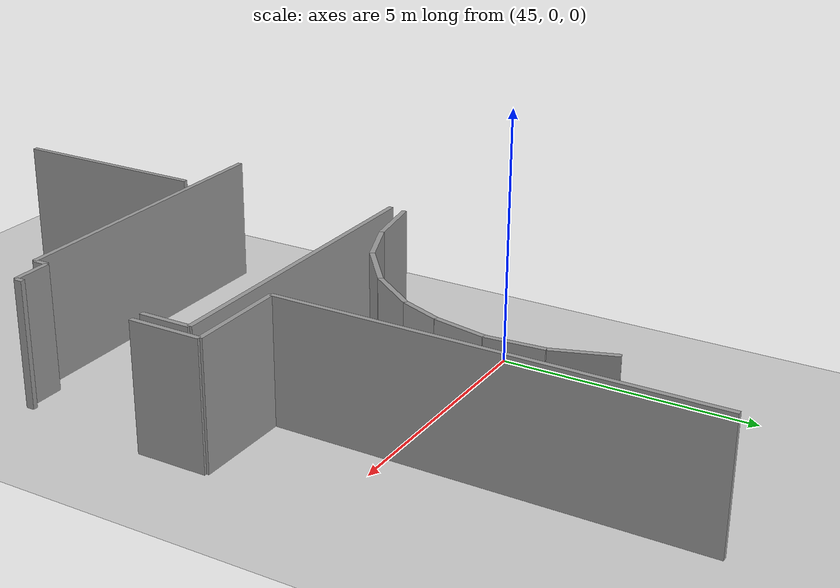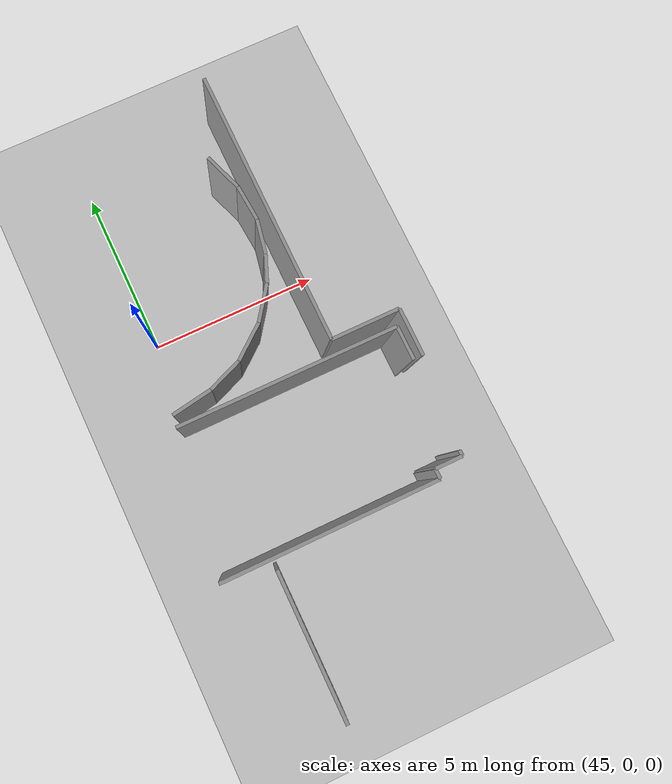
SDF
<sdf version="1.6">
 <world name="default">
  <model name="ground_plane">
   <static>1</static>
   <link name="link">
    <collision name="collision">
     <geometry><plane><normal>0 0 1</normal><size>100 100</size></plane></geometry>
     <surface><friction><ode><mu>100</mu><mu2>50</mu2></ode></friction></surface>
    </collision>
    <visual name="visual">
     <cast_shadows>0</cast_shadows>
     <geometry><plane><normal>0 0 1</normal><size>100 100</size></plane></geometry>
     <material>
      <script><uri>file://media/materials/scripts/gazebo.material</uri><name>Gazebo/Grey</name></script>
     </material>
    </visual>
   </link>
  </model>
  <model name="0510032218_A-40">
   <static>1</static>
   <link name="Wall_165">
    <collision name="Wall_165_Collision">
     <geometry><box><size>1.16955224345 0.1 2.5</size></box></geometry>
     <pose>0.584776121726 0 1.25 0 0 0</pose>
    </collision>
    <visual name="Wall_165_Visual">
     <pose>0.584776121726 0 1.25 0 0 0</pose>
     <geometry><box><size>1.16955224345 0.1 2.5</size></box></geometry>
     <material>
      <script><uri>file://media/materials/scripts/gazebo.material</uri><name>Gazebo/Grey</name></script>
      <ambient>1 1 1 1</ambient>
     </material>
    </visual>
    <pose>123.270612128 -46.0589597944 0 0 0 -1.22996254757</pose>
   </link>
   <link name="Wall_166">
    <collision name="Wall_166_Collision">
     <geometry><box><size>1.06716528413 0.1 2.5</size></box></geometry>
     <pose>0.533582642067 0 1.25 0 0 0</pose>
    </collision>
    <visual name="Wall_166_Visual">
     <pose>0.533582642067 0 1.25 0 0 0</pose>
     <geometry><box><size>1.06716528413 0.1 2.5</size></box></geometry>
     <material>
      <script><uri>file://media/materials/scripts/gazebo.material</uri><name>Gazebo/Grey</name></script>
      <ambient>1 1 1 1</ambient>
     </material>
    </visual>
    <pose>123.661561895 -47.1612350459 0 0 0 -1.49459915335</pose>
   </link>
   <link name="Wall_167">
    <collision name="Wall_167_Collision">
     <geometry><box><size>1.0033344051 0.1 2.5</size></box></geometry>
     <pose>0.501667202549 0 1.25 0 0 0</pose>
    </collision>
    <visual name="Wall_167_Visual">
     <pose>0.501667202549 0 1.25 0 0 0</pose>
     <geometry><box><size>1.0033344051 0.1 2.5</size></box></geometry>
     <material>
      <script><uri>file://media/materials/scripts/gazebo.material</uri><name>Gazebo/Grey</name></script>
      <ambient>1 1 1 1</ambient>
     </material>
    </visual>
    <pose>123.74279821 -48.2253038429 0 0 0 -1.7720375444</pose>
   </link>
   <link name="Wall_168">
    <collision name="Wall_168_Collision">
     <geometry><box><size>0.809200599992 0.1 2.5</size></box></geometry>
     <pose>0.404600299996 0 1.25 0 0 0</pose>
    </collision>
    <visual name="Wall_168_Visual">
     <pose>0.404600299996 0 1.25 0 0 0</pose>
     <geometry><box><size>0.809200599992 0.1 2.5</size></box></geometry>
     <material>
      <script><uri>file://media/materials/scripts/gazebo.material</uri><name>Gazebo/Grey</name></script>
      <ambient>1 1 1 1</ambient>
     </material>
    </visual>
    <pose>123.542246057 -49.2083901882 0 0 0 -1.95846832551</pose>
   </link>
   <link name="Wall_169">
    <collision name="Wall_169_Collision">
     <geometry><box><size>1.10840777504 0.1 2.5</size></box></geometry>
     <pose>0.554203887519 0 1.25 0 0 0</pose>
    </collision>
    <visual name="Wall_169_Visual">
     <pose>0.554203887519 0 1.25 0 0 0</pose>
     <geometry><box><size>1.10840777504 0.1 2.5</size></box></geometry>
     <material>
      <script><uri>file://media/materials/scripts/gazebo.material</uri><name>Gazebo/Grey</name></script>
      <ambient>1 1 1 1</ambient>
     </material>
    </visual>
    <pose>123.236340558 -49.9575413321 0 0 0 -2.20582306219</pose>
   </link>
   <link name="Wall_170">
    <collision name="Wall_170_Collision">
     <geometry><box><size>1.16182925897 0.1 2.5</size></box></geometry>
     <pose>0.580914629487 0 1.25 0 0 0</pose>
    </collision>
    <visual name="Wall_170_Visual">
     <pose>0.580914629487 0 1.25 0 0 0</pose>
     <geometry><box><size>1.16182925897 0.1 2.5</size></box></geometry>
     <material>
      <script><uri>file://media/materials/scripts/gazebo.material</uri><name>Gazebo/Grey</name></script>
      <ambient>1 1 1 1</ambient>
     </material>
    </visual>
    <pose>122.578834132 -50.8498714816 0 0 0 -2.47256759233</pose>
   </link>
   <link name="Wall_171">
    <collision name="Wall_171_Collision">
     <geometry><box><size>1.05220308886 0.1 2.5</size></box></geometry>
     <pose>0.526101544432 0 1.25 0 0 0</pose>
    </collision>
    <visual name="Wall_171_Visual">
     <pose>0.526101544432 0 1.25 0 0 0</pose>
     <geometry><box><size>1.05220308886 0.1 2.5</size></box></geometry>
     <material>
      <script><uri>file://media/materials/scripts/gazebo.material</uri><name>Gazebo/Grey</name></script>
      <ambient>1 1 1 1</ambient>
     </material>
    </visual>
    <pose>121.667464221 -51.5704629835 0 0 0 -2.76545452826</pose>
   </link>
   <link name="Wall_172">
    <collision name="Wall_172_Collision">
     <geometry><box><size>1.20307127536 0.1 2.5</size></box></geometry>
     <pose>0.601535637679 0 1.25 0 0 0</pose>
    </collision>
    <visual name="Wall_172_Visual">
     <pose>0.601535637679 0 1.25 0 0 0</pose>
     <geometry><box><size>1.20307127536 0.1 2.5</size></box></geometry>
     <material>
      <script><uri>file://media/materials/scripts/gazebo.material</uri><name>Gazebo/Grey</name></script>
      <ambient>1 1 1 1</ambient>
     </material>
    </visual>
    <pose>120.688820487 -51.9569701393 0 0 0 -2.97699902096</pose>
   </link>
   <link name="Wall_177">
    <collision name="Wall_177_Collision">
     <geometry><box><size>6.24884968108 0.1 2.5</size></box></geometry>
     <pose>3.12442484054 0 1.25 0 0 0</pose>
    </collision>
    <visual name="Wall_177_Visual">
     <pose>3.12442484054 0 1.25 0 0 0</pose>
     <geometry><box><size>6.24884968108 0.1 2.5</size></box></geometry>
     <material>
      <script><uri>file://media/materials/scripts/gazebo.material</uri><name>Gazebo/Grey</name></script>
      <ambient>1 1 1 1</ambient>
     </material>
    </visual>
    <pose>125.078120141 -56.5499952401 0 0 0 3.14159265359</pose>
   </link>
   <link name="Wall_184">
    <collision name="Wall_184_Collision">
     <geometry><box><size>6.41259162885 0.1 2.5</size></box></geometry>
     <pose>3.20629581443 0 1.25 0 0 0</pose>
    </collision>
    <visual name="Wall_184_Visual">
     <pose>3.20629581443 0 1.25 0 0 0</pose>
     <geometry><box><size>6.41259162885 0.1 2.5</size></box></geometry>
     <material>
      <script><uri>file://media/materials/scripts/gazebo.material</uri><name>Gazebo/Grey</name></script>
      <ambient>1 1 1 1</ambient>
     </material>
    </visual>
    <pose>119.447428046 -52.48297528 0 0 0 0.0</pose>
   </link>
   <link name="Wall_185">
    <collision name="Wall_185_Collision">
     <geometry><box><size>0.995525656078 0.1 2.5</size></box></geometry>
     <pose>0.497762828039 0 1.25 0 0 0</pose>
    </collision>
    <visual name="Wall_185_Visual">
     <pose>0.497762828039 0 1.25 0 0 0</pose>
     <geometry><box><size>0.995525656078 0.1 2.5</size></box></geometry>
     <material>
      <script><uri>file://media/materials/scripts/gazebo.material</uri><name>Gazebo/Grey</name></script>
      <ambient>1 1 1 1</ambient>
     </material>
    </visual>
    <pose>125.860019674 -52.48297528 0 0 0 -1.57079632679</pose>
   </link>
   <link name="Wall_186">
    <collision name="Wall_186_Collision">
     <geometry><box><size>0.164122742995 0.1 2.5</size></box></geometry>
     <pose>0.0820613714975 0 1.25 0 0 0</pose>
    </collision>
    <visual name="Wall_186_Visual">
     <pose>0.0820613714975 0 1.25 0 0 0</pose>
     <geometry><box><size>0.164122742995 0.1 2.5</size></box></geometry>
     <material>
      <script><uri>file://media/materials/scripts/gazebo.material</uri><name>Gazebo/Grey</name></script>
      <ambient>1 1 1 1</ambient>
     </material>
    </visual>
    <pose>125.860019674 -56.0972297147 0 0 0 -1.57079632679</pose>
   </link>
   <link name="Wall_187">
    <collision name="Wall_187_Collision">
     <geometry><box><size>0.786976803224 0.1 2.5</size></box></geometry>
     <pose>0.393488401612 0 1.25 0 0 0</pose>
    </collision>
    <visual name="Wall_187_Visual">
     <pose>0.393488401612 0 1.25 0 0 0</pose>
     <geometry><box><size>0.786976803224 0.1 2.5</size></box></geometry>
     <material>
      <script><uri>file://media/materials/scripts/gazebo.material</uri><name>Gazebo/Grey</name></script>
      <ambient>1 1 1 1</ambient>
     </material>
    </visual>
    <pose>125.860019674 -56.2613524577 0 0 0 3.14159265359</pose>
   </link>
   <link name="Wall_188">
    <collision name="Wall_188_Collision">
     <geometry><box><size>0.288687433857 0.1 2.5</size></box></geometry>
     <pose>0.144343716928 0 1.25 0 0 0</pose>
    </collision>
    <visual name="Wall_188_Visual">
     <pose>0.144343716928 0 1.25 0 0 0</pose>
     <geometry><box><size>0.288687433857 0.1 2.5</size></box></geometry>
     <material>
      <script><uri>file://media/materials/scripts/gazebo.material</uri><name>Gazebo/Grey</name></script>
      <ambient>1 1 1 1</ambient>
     </material>
    </visual>
    <pose>125.073042871 -56.2613524577 0 0 0 -1.55320799115</pose>
   </link>
   <link name="Wall_199">
    <collision name="Wall_199_Collision">
     <geometry><box><size>1.40627677466 0.1 2.5</size></box></geometry>
     <pose>0.703138387332 0 1.25 0 0 0</pose>
    </collision>
    <visual name="Wall_199_Visual">
     <pose>0.703138387332 0 1.25 0 0 0</pose>
     <geometry><box><size>1.40627677466 0.1 2.5</size></box></geometry>
     <material>
      <script><uri>file://media/materials/scripts/gazebo.material</uri><name>Gazebo/Grey</name></script>
      <ambient>1 1 1 1</ambient>
     </material>
    </visual>
    <pose>126.132922921 -53.4785009361 0 0 0 1.57079632679</pose>
   </link>
   <link name="Wall_200">
    <collision name="Wall_200_Collision">
     <geometry><box><size>1.99917494367 0.1 2.5</size></box></geometry>
     <pose>0.999587471837 0 1.25 0 0 0</pose>
    </collision>
    <visual name="Wall_200_Visual">
     <pose>0.999587471837 0 1.25 0 0 0</pose>
     <geometry><box><size>1.99917494367 0.1 2.5</size></box></geometry>
     <material>
      <script><uri>file://media/materials/scripts/gazebo.material</uri><name>Gazebo/Grey</name></script>
      <ambient>1 1 1 1</ambient>
     </material>
    </visual>
    <pose>126.132922921 -52.0722241615 0 0 0 3.14159265359</pose>
   </link>
   <link name="Wall_201">
    <collision name="Wall_201_Collision">
     <geometry><box><size>8.20347158316 0.1 2.5</size></box></geometry>
     <pose>4.10173579158 0 1.25 0 0 0</pose>
    </collision>
    <visual name="Wall_201_Visual">
     <pose>4.10173579158 0 1.25 0 0 0</pose>
     <geometry><box><size>8.20347158316 0.1 2.5</size></box></geometry>
     <material>
      <script><uri>file://media/materials/scripts/gazebo.material</uri><name>Gazebo/Grey</name></script>
      <ambient>1 1 1 1</ambient>
     </material>
    </visual>
    <pose>124.133747977 -52.0722241615 0 0 0 1.57079632679</pose>
   </link>
   <link name="Wall_247">
    <collision name="Wall_247_Collision">
     <geometry><box><size>4.09342176245 0.1 2.5</size></box></geometry>
     <pose>2.04671088122 0 1.25 0 0 0</pose>
    </collision>
    <visual name="Wall_247_Visual">
     <pose>2.04671088122 0 1.25 0 0 0</pose>
     <geometry><box><size>4.09342176245 0.1 2.5</size></box></geometry>
     <material>
      <script><uri>file://media/materials/scripts/gazebo.material</uri><name>Gazebo/Grey</name></script>
      <ambient>1 1 1 1</ambient>
     </material>
    </visual>
    <pose>120.301678672 -56.8545044902 0 0 0 -1.57079632679</pose>
   </link>
   <pose>-74.8 49.7517929109 0 0 0 0</pose>
  </model>
 </world>
</sdf>
